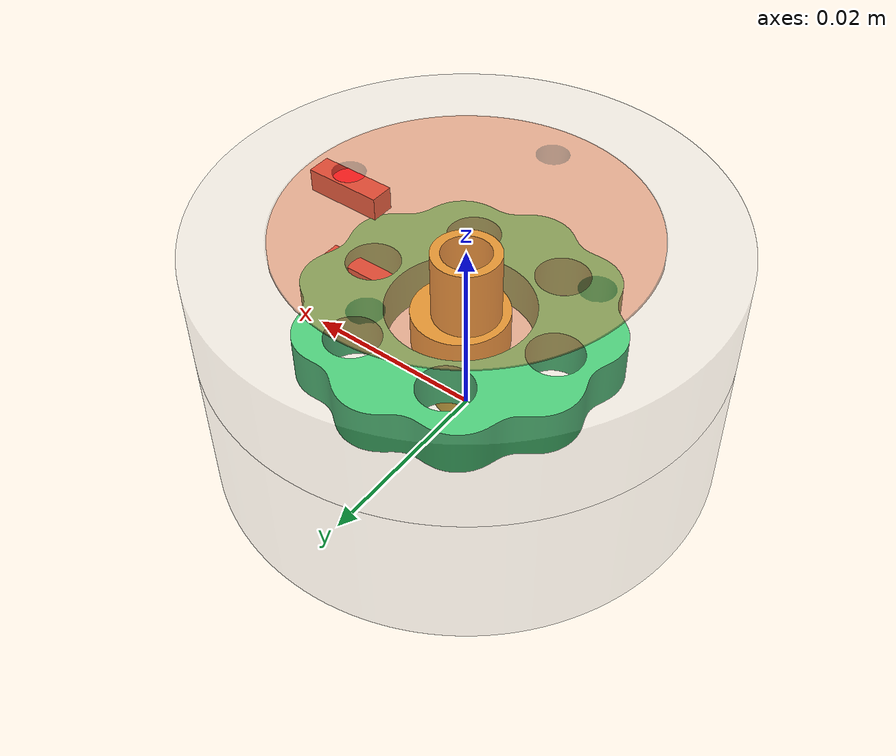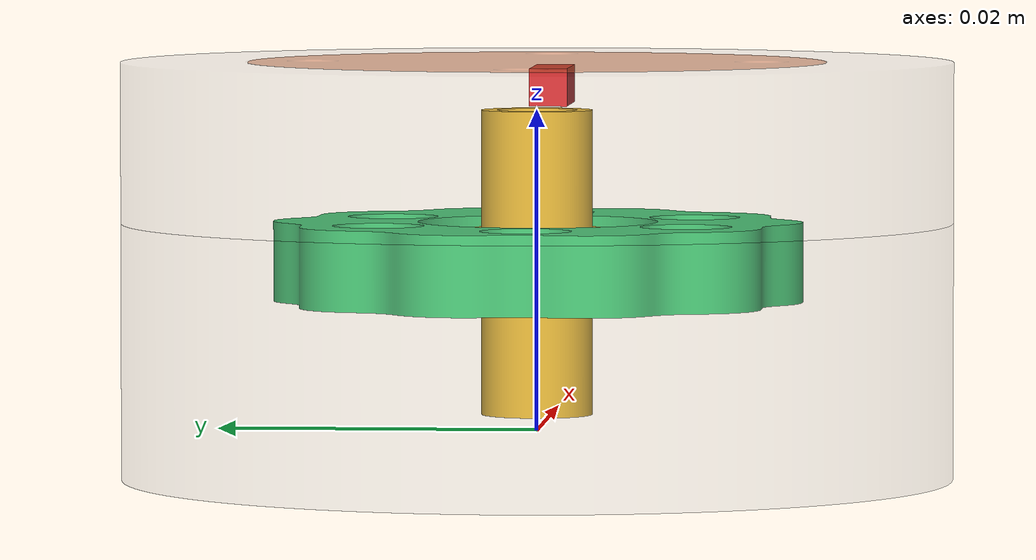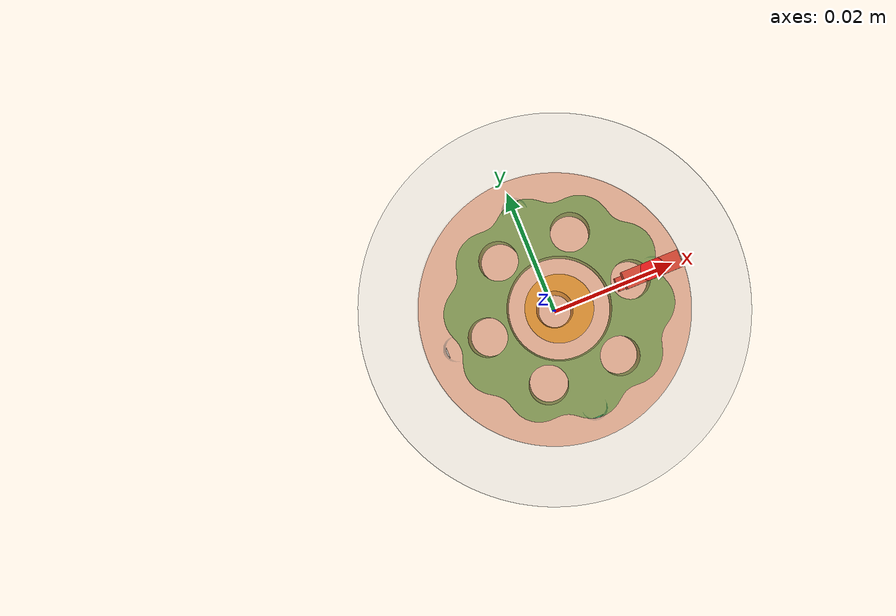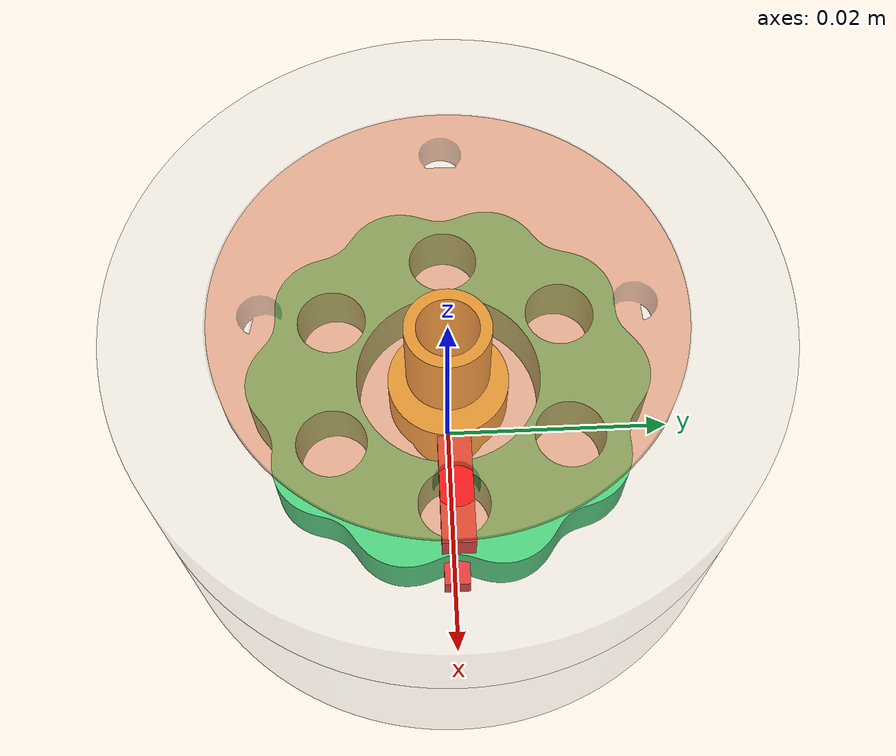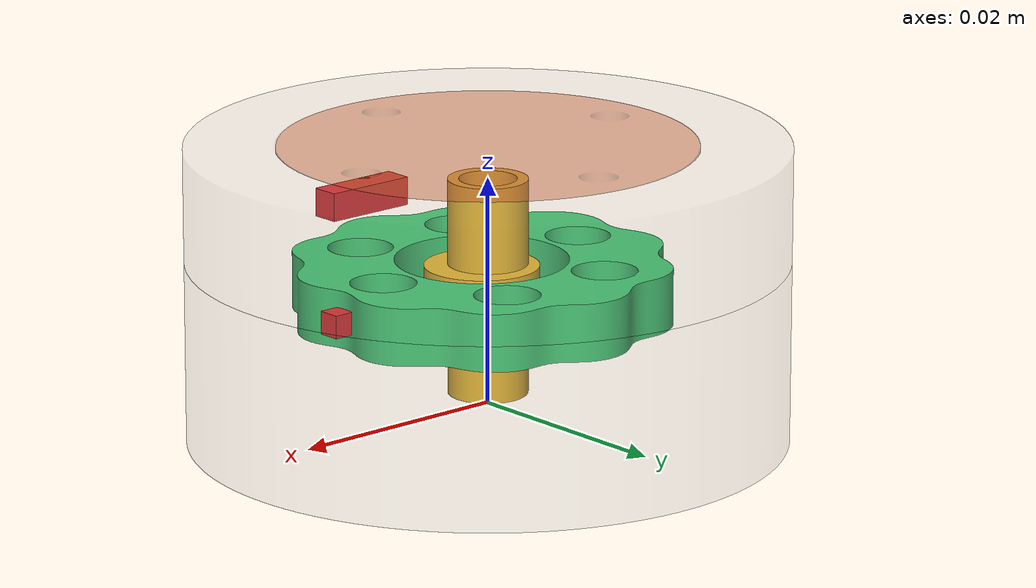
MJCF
<mujoco model="cycloidal_center_viewer">

  <compiler meshdir="out" angle="degree" autolimits="true"/>
  <option gravity="0 0 0"/>

  <asset>
    <mesh name="housing"       file="housing.stl"       scale="0.001 0.001 0.001"/>
    <mesh name="eccentric"     file="eccentric.stl"     scale="0.001 0.001 0.001"/>
    <mesh name="disc"          file="disc.stl"          scale="0.001 0.001 0.001"/>
    <mesh name="carrier_back"  file="carrier_back.stl"  scale="0.001 0.001 0.001"/>
    <mesh name="carrier_front" file="carrier_front.stl" scale="0.001 0.001 0.001"/>
    <mesh name="output_cap"    file="output_cap.stl"    scale="0.001 0.001 0.001"/>
    <material name="case" rgba="0.70 0.72 0.75 0.12"/>   <!-- translucent shell    -->
    <material name="ecc"  rgba="0.95 0.72 0.10 1"/>      <!-- input: bright, opaque -->
    <material name="disc" rgba="0.20 0.80 0.40 1"/>
    <material name="carr" rgba="0.80 0.45 0.30 0.55"/>   <!-- translucent: see disc -->
    <material name="mark" rgba="0.90 0.10 0.10 1"/>
  </asset>

  <worldbody>
    <light pos="0.05 -0.05 0.13" dir="-0.4 0.4 -1"/>
    <camera name="iso" pos="0.060 -0.060 0.060" xyaxes="0.7 0.7 0 -0.4 0.4 0.82"/>

    <!-- fixed shell -->
    <geom type="mesh" mesh="housing" material="case" contype="0" conaffinity="0"/>
    <geom type="mesh" mesh="output_cap" material="case" contype="0" conaffinity="0"/>

    <!-- eccentric input: spins ratio x about the main axis (z=0 at its base = z_bb) -->
    <body name="ecc_body" pos="0 0 0.001">
      <joint name="joint_ecc" type="hinge" axis="0 0 1"/>
      <geom type="mesh" mesh="eccentric" material="ecc" contype="0" conaffinity="0"/>

      <!-- disc rides the offset cam: its centre sits at radius E in the rotating
           eccentric frame (so it ORBITS), and it spins about that centre. -->
      <body name="disc_body" pos="0.0007 0 0.007">
        <joint name="joint_disc" type="hinge" axis="0 0 1"/>
        <geom type="mesh" mesh="disc" material="disc" contype="0" conaffinity="0"/>
        <geom type="box" pos="0.013 0 0.0025" size="0.004 0.001 0.001" material="mark"
              contype="0" conaffinity="0"/>
      </body>
    </body>

    <!-- output carrier cage: 1x slow output, both plates + the flange co-rotate -->
    <body name="carrier_body" pos="0 0 0">
      <joint name="joint_out" type="hinge" axis="0 0 1"/>
      <geom type="mesh" mesh="carrier_back"  material="carr" pos="0 0 0.005"
            contype="0" conaffinity="0"/>
      <geom type="mesh" mesh="carrier_front" material="carr" pos="0 0 0.013"
            contype="0" conaffinity="0"/>
      <geom type="box" pos="0.014 0 0.021" size="0.004 0.0012 0.0012" material="mark"
            contype="0" conaffinity="0"/>
    </body>
  </worldbody>
</mujoco>
